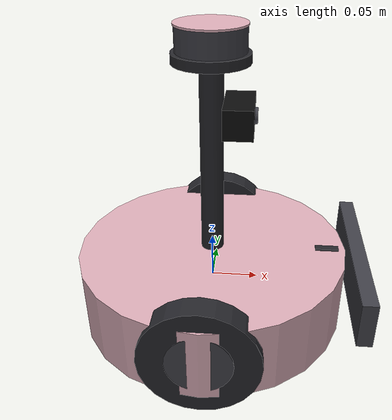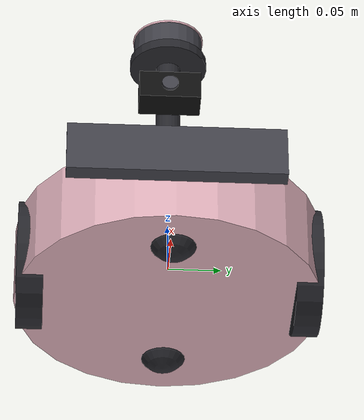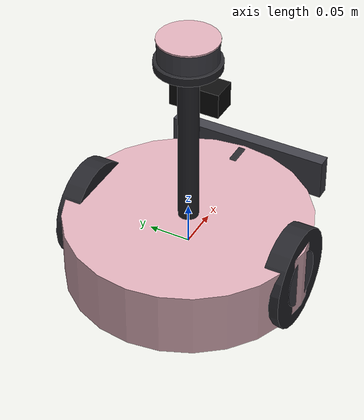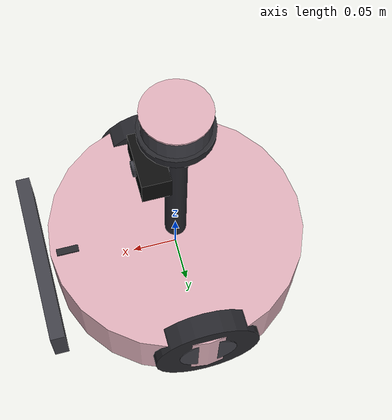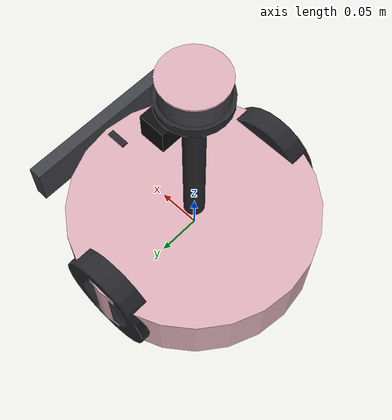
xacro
<?xml version="1.0"?>
<robot xmlns:xacro="http://www.ros.org/wiki/xacro" name="my_robot">
  <xacro:property name="body_r" value="0.145"/>
  <xacro:property name="body_h" value="0.08"/>
  <xacro:property name="body_m" value="3.0"/>
  <xacro:property name="wheel_r" value="0.06"/>
  <xacro:property name="wheel_t" value="0.025"/>
  <xacro:property name="wheel_m" value="0.25"/>
  <xacro:property name="wheel_y" value="0.13"/>
  <xacro:property name="caster_r" value="0.025"/>
  <xacro:property name="caster_x" value="0.095"/>
  <xacro:property name="clearance" value="0.02"/>

  <material name="dusty_pink"><color rgba="0.86 0.68 0.72 1.0"/></material>
  <material name="matte_dark"><color rgba="0.15 0.15 0.17 1.0"/></material>
  <material name="accent_rim"><color rgba="0.25 0.25 0.28 1.0"/></material>

  <xacro:macro name="cyl_inertia" params="m r h">
    <inertia ixx="${m*(3*r*r+h*h)/12}" iyy="${m*(3*r*r+h*h)/12}" izz="${m*r*r/2}" ixy="0" ixz="0" iyz="0"/>
  </xacro:macro>

  <!-- Ana Gövde -->
  <link name="base_link">
    <visual>
      <geometry><cylinder radius="${body_r}" length="${body_h}"/></geometry>
      <material name="dusty_pink"/>
    </visual>
    <visual>
      <origin xyz="${body_r - 0.02} 0 ${body_h/2 + 0.001}"/>
      <geometry><box size="0.025 0.008 0.002"/></geometry>
      <material name="matte_dark"/>
    </visual>
    <collision>
      <geometry><cylinder radius="${body_r}" length="${body_h}"/></geometry>
    </collision>
    <inertial>
      <mass value="${body_m}"/>
      <xacro:cyl_inertia m="${body_m}" r="${body_r}" h="${body_h}"/>
    </inertial>
  </link>

  <!-- Tekerlekler -->
  <xacro:macro name="wheel" params="name y">
    <link name="${name}_wheel">
      <visual>
        <geometry><cylinder radius="${wheel_r}" length="${wheel_t}"/></geometry>
        <material name="matte_dark"/>
      </visual>
      <visual>
        <geometry><cylinder radius="${wheel_r * 0.55}" length="${wheel_t + 0.002}"/></geometry>
        <material name="accent_rim"/>
      </visual>
      <collision>
        <geometry><cylinder radius="${wheel_r}" length="${wheel_t}"/></geometry>
      </collision>
      <inertial>
        <mass value="${wheel_m}"/>
        <inertia ixx="${wheel_m*(3*wheel_r*wheel_r+wheel_t*wheel_t)/12}"
                 iyy="${wheel_m*(3*wheel_r*wheel_r+wheel_t*wheel_t)/12}"
                 izz="${wheel_m*wheel_r*wheel_r/2}" ixy="0" ixz="0" iyz="0"/>
      </inertial>
    </link>
    <joint name="${name}_wheel_joint" type="continuous">
      <parent link="base_link"/>
      <child link="${name}_wheel"/>
      <origin xyz="0 ${y} ${-(body_h/2 + clearance) + wheel_r}" rpy="-1.5708 0 0"/>
      <axis xyz="0 0 1"/>
    </joint>
    <gazebo reference="${name}_wheel">
      <mu1>1.5</mu1>
      <mu2>1.5</mu2>
      <kp>1000000.0</kp>
      <kd>10.0</kd>
    </gazebo>
  </xacro:macro>

  <xacro:wheel name="left"  y="${wheel_y}"/>
  <xacro:wheel name="right" y="${-wheel_y}"/>

  <!-- Sarhoş Destek Tekerlekleri (Caster) -->
  <xacro:macro name="caster" params="name x">
    <link name="${name}_caster">
      <visual>
        <geometry><sphere radius="${caster_r}"/></geometry>
        <material name="matte_dark"/>
      </visual>
      <collision>
        <geometry><sphere radius="${caster_r}"/></geometry>
      </collision>
      <inertial>
        <mass value="0.05"/>
        <inertia ixx="1e-5" iyy="1e-5" izz="1e-5" ixy="0" ixz="0" iyz="0"/>
      </inertial>
    </link>
    <joint name="${name}_caster_joint" type="fixed">
      <parent link="base_link"/>
      <child link="${name}_caster"/>
      <origin xyz="${x} 0 ${-(body_h/2 + clearance) + caster_r + 0.008}"/>
    </joint>
    <gazebo reference="${name}_caster">
      <mu1>0.001</mu1>
      <mu2>0.001</mu2>
    </gazebo>
  </xacro:macro>

  <xacro:caster name="front" x="${caster_x}"/>
  <xacro:caster name="rear"  x="${-caster_x}"/>

  <!-- Taşıyıcı Direk (Mast) -->
  <xacro:property name="mast_r" value="0.012"/>
  <xacro:property name="mast_h" value="0.20"/>
  <link name="mast_link">
    <visual>
      <geometry><cylinder radius="${mast_r}" length="${mast_h}"/></geometry>
      <material name="matte_dark"/>
    </visual>
    <collision>
      <geometry><cylinder radius="${mast_r}" length="${mast_h}"/></geometry>
    </collision>
    <inertial>
      <mass value="0.10"/>
      <inertia ixx="1e-4" iyy="1e-4" izz="1e-5" ixy="0" ixz="0" iyz="0"/>
    </inertial>
  </link>
  <joint name="mast_joint" type="fixed">
    <parent link="base_link"/>
    <child link="mast_link"/>
    <origin xyz="0 0 ${body_h/2 + mast_h/2}"/>
  </joint>

  <!-- Gazebo Diferansiyel Sürüş Eklentisi -->
  <gazebo>
    <plugin filename="gz-sim-diff-drive-system" name="gz::sim::systems::DiffDrive">
      <left_joint>left_wheel_joint</left_joint>
      <right_joint>right_wheel_joint</right_joint>
      <wheel_separation>${2*wheel_y}</wheel_separation>
      <wheel_radius>${wheel_r}</wheel_radius>
      <topic>cmd_vel</topic>
      <odom_topic>odom</odom_topic>
      <tf_topic>tf</tf_topic>
      <frame_id>odom</frame_id>
      <child_frame_id>base_link</child_frame_id>
      <odom_publish_frequency>30</odom_publish_frequency>
      <max_linear_acceleration>5.0</max_linear_acceleration>
      <min_linear_acceleration>-5.0</min_linear_acceleration>
      <max_angular_acceleration>5.0</max_angular_acceleration>
      <min_angular_acceleration>-5.0</min_angular_acceleration>
      <max_linear_velocity>1.0</max_linear_velocity>
      <min_linear_velocity>-1.0</min_linear_velocity>
      <max_wheel_torque>25.0</max_wheel_torque>
    </plugin>
    <plugin filename="gz-sim-joint-state-publisher-system" name="gz::sim::systems::JointStatePublisher">
      <topic>joint_states</topic>
    </plugin>
  </gazebo>

  <xacro:include filename="sensor_lidar.xacro"/>
  <xacro:include filename="sensor_camera.xacro"/>
  <xacro:include filename="sensor_imu.xacro"/>
  <xacro:include filename="sensor_bumper.xacro"/>
</robot>

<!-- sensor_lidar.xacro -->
<robot xmlns:xacro="http://www.ros.org/wiki/xacro">
  <link name="lidar_link">
    <visual>
      <origin xyz="0 0 -0.005"/>
      <geometry><cylinder radius="0.038" length="0.010"/></geometry>
      <material name="matte_dark"/>
    </visual>

    <visual>
      <origin xyz="0 0 0.012"/>
      <geometry><cylinder radius="0.034" length="0.024"/></geometry>
      <material name="accent_rim"/>
    </visual>

    <visual>
      <origin xyz="0 0 0.025"/>
      <geometry><cylinder radius="0.035" length="0.002"/></geometry>
      <material name="dusty_pink"/>
    </visual>

    <collision>
      <origin xyz="0 0 0.01"/>
      <geometry><cylinder radius="0.036" length="0.035"/></geometry>
    </collision>
    <inertial>
      <mass value="0.14"/>
      <inertia ixx="1e-4" iyy="1e-4" izz="1e-4" ixy="0" ixz="0" iyz="0"/>
    </inertial>
  </link>

  <!-- LiDAR yüksekligi -->
  <joint name="lidar_joint" type="fixed">
    <parent link="base_link"/>
    <child link="lidar_link"/>
    <origin xyz="0 0 0.25"/>
  </joint>

  <gazebo reference="lidar_link">
    <sensor name="lidar" type="gpu_lidar">
      <topic>scan</topic>
      <update_rate>10</update_rate>
      <always_on>true</always_on>
      <gz_frame_id>lidar_link</gz_frame_id>
      <lidar>
        <scan>
          <horizontal>
            <samples>360</samples>
            <resolution>1</resolution>
            <min_angle>-3.14159</min_angle>
            <max_angle>3.14159</max_angle>
          </horizontal>
        </scan>
        <range>
          <min>0.12</min>
          <max>6.0</max>
          <resolution>0.01</resolution>
        </range>
      </lidar>
    </sensor>
  </gazebo>

</robot>

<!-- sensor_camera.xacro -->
<robot xmlns:xacro="http://www.ros.org/wiki/xacro">

  <!-- LiDAR z=0.25m'de; kamera z=0.19m -->
  <xacro:property name="cam_x" value="${mast_r + 0.015}"/>
  <xacro:property name="cam_z" value="0.19"/>
  <xacro:property name="cam_pitch" value="0.0"/>

  <material name="cam_black"><color rgba="0.05 0.05 0.05 1"/></material>

  <!-- Kamera gövdesi: direğin ön yüzüne oturur, ileri (+x) bakar -->
  <link name="camera_link">
    <visual>
      <geometry><box size="0.03 0.06 0.03"/></geometry>
      <material name="cam_black"/>
    </visual>
    <visual>
      <origin xyz="0.016 0 0" rpy="0 1.5708 0"/>
      <geometry><cylinder radius="0.008" length="0.004"/></geometry>
      <material name="accent_rim"/>
    </visual>
    <collision>
      <geometry><box size="0.03 0.06 0.03"/></geometry>
    </collision>
    <inertial>
      <mass value="0.02"/>
      <inertia ixx="1e-5" iyy="1e-5" izz="1e-5" ixy="0" ixz="0" iyz="0"/>
    </inertial>
  </link>
  <joint name="camera_joint" type="fixed">
    <parent link="base_link"/>
    <child link="camera_link"/>
    <origin xyz="${cam_x} 0 ${cam_z}" rpy="0 ${cam_pitch} 0"/>
  </joint>

  <!-- Gazebo sensör tanımı -->
  <gazebo reference="camera_link">
    <sensor name="camera" type="camera">
      <always_on>true</always_on>
      <update_rate>15</update_rate>
      <topic>camera/image_raw</topic>
      <gz_frame_id>camera_link</gz_frame_id>
      <camera>
        <horizontal_fov>1.5708</horizontal_fov>
        <image>
          <width>640</width>
          <height>480</height>
          <format>R8G8B8</format>
        </image>
        <clip><near>0.05</near><far>15</far></clip>
      </camera>
    </sensor>
  </gazebo>
</robot>

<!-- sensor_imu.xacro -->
<!-- Uye C: IMU. Govdenin icinde, tekerlek ekseni hizasinda. -->
<robot xmlns:xacro="http://www.ros.org/wiki/xacro">
  <link name="imu_link">
    <inertial>
      <mass value="0.01"/>
      <inertia ixx="1e-6" iyy="1e-6" izz="1e-6" ixy="0" ixz="0" iyz="0"/>
    </inertial>
  </link>

  <joint name="imu_joint" type="fixed">
    <parent link="base_link"/>
    <child link="imu_link"/>
    <origin xyz="0 0 0.0" rpy="0 0 0"/>
  </joint>

  <gazebo reference="imu_link">
    <sensor name="imu_sensor" type="imu">
      <always_on>true</always_on>
      <update_rate>50</update_rate>
      <visualize>false</visualize>
      <topic>imu</topic>
      <gz_frame_id>imu_link</gz_frame_id>
    </sensor>
  </gazebo>
</robot>

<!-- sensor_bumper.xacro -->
<robot xmlns:xacro="http://www.ros.org/wiki/xacro">
  <xacro:property name="bumper_x" value="${body_r + 0.012}"/>
  <xacro:property name="bumper_w" value="0.20"/>
  <xacro:property name="bumper_h" value="0.05"/>
  <xacro:property name="bumper_t" value="0.016"/>

  <link name="bumper_link">
    <visual>
      <geometry><box size="${bumper_t} ${bumper_w} ${bumper_h}"/></geometry>
      <material name="accent_rim"/>
    </visual>
    <collision>
      <geometry><box size="${bumper_t} ${bumper_w} ${bumper_h}"/></geometry>
    </collision>
    <inertial>
      <mass value="0.05"/>
      <inertia ixx="1e-5" iyy="1e-5" izz="1e-5" ixy="0" ixz="0" iyz="0"/>
    </inertial>
  </link>

  <joint name="bumper_joint" type="fixed">
    <parent link="base_link"/>
    <child link="bumper_link"/>
    <origin xyz="${bumper_x} 0 0.02" rpy="0 0 0"/>
  </joint>

  <gazebo reference="bumper_joint">
    <preserveFixedJoint>true</preserveFixedJoint>
  </gazebo>

  <gazebo reference="bumper_link">
    <sensor name="bumper_sensor" type="contact">
      <always_on>true</always_on>
      <update_rate>30</update_rate>
      <topic>bumper</topic>
      <contact>
        <collision>bumper_link_collision</collision>
      </contact>
    </sensor>
  </gazebo>
</robot>
